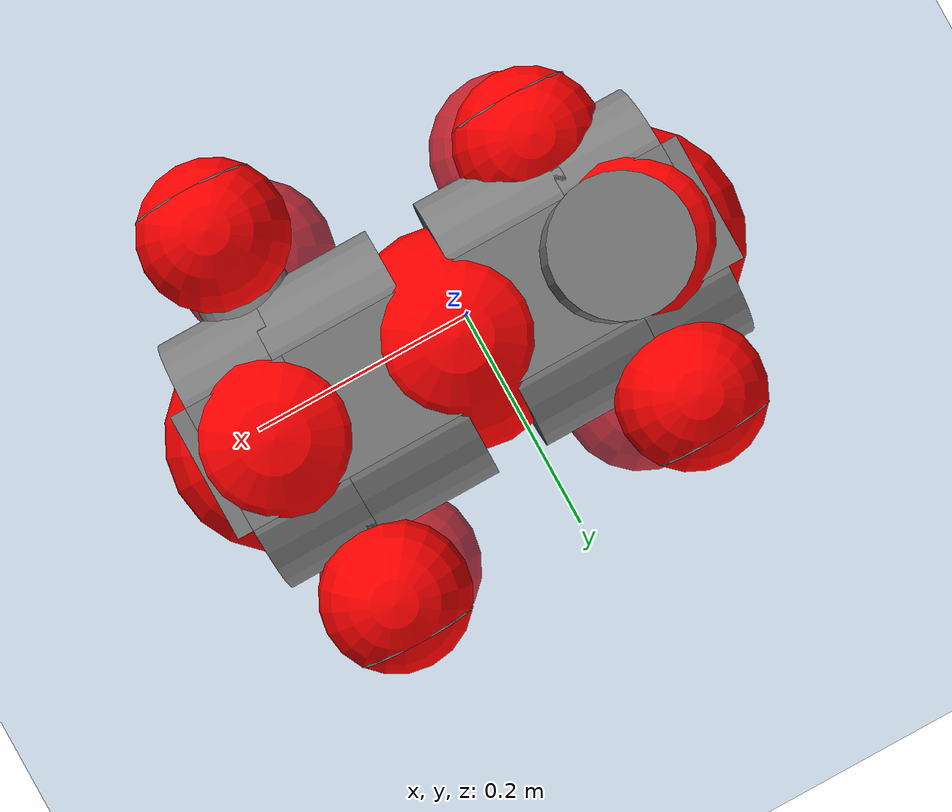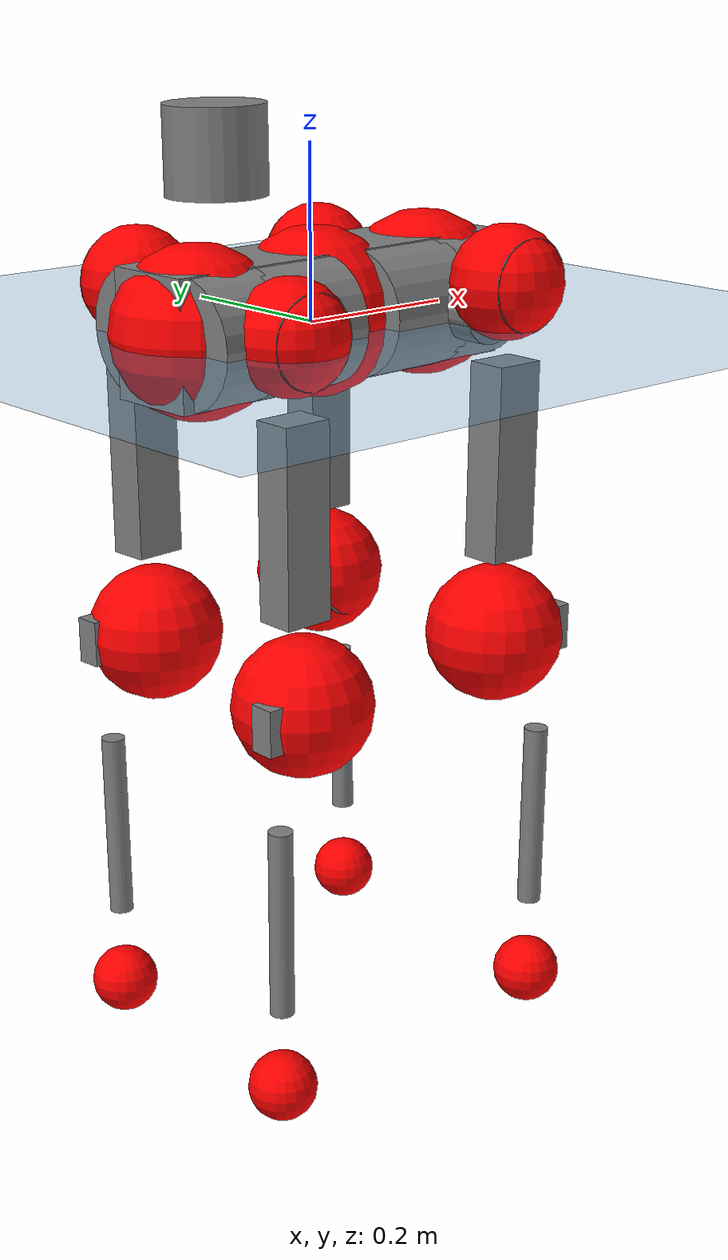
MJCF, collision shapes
<mujoco model="anymal_c">
  <compiler angle="radian" assetdir="assets" balanceinertia="true" inertiafromgeom="false"/>

  <option timestep="0.005" density="1.2" viscosity="2e-05"/>

  <size nkey="1"/>

  <visual>
    <quality shadowsize="8192"/>
    <map shadowclip="0.5"/>
  </visual>

  <default>
    <default class="/">
      <material specular="0" shininess="0.25"/>
      <geom contype="0" conaffinity="0" group="1" solref="-1000 -80"/>
      <site size="0.01 0.005 0.005" group="5"/>
      <general forcelimited="true" forcerange="-80 80" biastype="affine" gainprm="80" biasprm="0 -80 -2"/>
      <default class="anymal_c">
        <joint armature="0.01" damping="0.01" frictionloss="0.1"/>
        <default class="visual">
          <geom type="mesh" group="2"/>
          <default class="visual_zflip"/>
        </default>
        <default class="collision">
          <geom type="cylinder" group="3"/>
          <default class="foot">
            <geom size="0.03 0 0" type="sphere" condim="6" priority="1" friction="0.8 0.02 0.01" solimp="0.015 1 0.03"/>
          </default>
        </default>
      </default>
      <default class="reward_collision_sphere">
        <geom group="5" rgba="1 0 0 1"/>
      </default>
    </default>
  </default>

  <asset>
    <texture type="skybox" colorspace="auto" name="//unnamed_texture_0" builtin="gradient" rgb1="0.95 0.95 0.95" rgb2="0.95 0.95 0.95" width="100" height="600"/>
    <texture type="2d" colorspace="auto" name="texplane" builtin="checker" rgb1="0.345 0.575 0.748" rgb2="0.345 0.575 0.748" markrgb="1 1 1" width="512" height="512"/>
    <texture type="2d" colorspace="linear" name="base" file="base.png"/>
    <texture type="2d" colorspace="linear" name="top_shell" file="top_shell.png"/>
    <texture type="2d" colorspace="linear" name="bottom_shell" file="bottom_shell.png"/>
    <texture type="2d" colorspace="linear" name="remote" file="remote.png"/>
    <texture type="2d" colorspace="linear" name="hatch" file="hatch.png"/>
    <texture type="2d" colorspace="linear" name="handle" file="handle.png"/>
    <texture type="2d" colorspace="linear" name="face" file="face.png"/>
    <texture type="2d" colorspace="linear" name="battery" file="battery.png"/>
    <texture type="2d" colorspace="linear" name="lidar_cage" file="lidar_cage.png"/>
    <texture type="2d" colorspace="linear" name="depth_camera" file="depth_camera.png"/>
    <texture type="2d" colorspace="linear" name="wide_angle_camera" file="wide_angle_camera.png"/>
    <texture type="2d" colorspace="linear" name="lidar" file="lidar.png"/>
    <texture type="2d" colorspace="linear" name="drive" file="drive.png"/>
    <texture type="2d" colorspace="linear" name="hip_l" file="hip_l.png"/>
    <texture type="2d" colorspace="linear" name="shank_l" file="shank_l.png"/>
    <texture type="2d" colorspace="linear" name="foot" file="foot.png"/>
    <texture type="2d" colorspace="linear" name="thigh" file="thigh.png"/>
    <texture type="2d" colorspace="linear" name="shank_r" file="shank_r.png"/>
    <texture type="2d" colorspace="linear" name="hip_r" file="hip_r.png"/>
    <material name="MatPlane" class="/" texture="texplane" texuniform="true" texrepeat="2 2" specular="0.9" shininess="0.5"/>
    <material name="black_plastic" class="/" rgba="0.007 0.007 0.007 1"/>
    <material name="green" class="/" rgba="0.052 0.178 0.033 1"/>
    <material name="red" class="/" rgba="0.178 0.006 0.005 1"/>
    <material name="yellow" class="/" rgba="0.178 0.119 0.006 1"/>
    <material name="lwl" class="/" rgba="0.8 0.8 0.8 1"/>
    <material name="base" class="/" texture="base"/>
    <material name="top_shell" class="/" texture="top_shell"/>
    <material name="bottom_shell" class="/" texture="bottom_shell"/>
    <material name="hip_l" class="/" texture="hip_l"/>
    <material name="thigh" class="/" texture="thigh"/>
    <material name="shank_l" class="/" texture="shank_l"/>
    <material name="foot" class="/" texture="foot"/>
    <material name="hip_r" class="/" texture="hip_r"/>
    <material name="shank" class="/" texture="shank_r"/>
    <material name="hatch" class="/" texture="hatch"/>
    <material name="remote" class="/" texture="remote"/>
    <material name="handle" class="/" texture="handle"/>
    <material name="face" class="/" texture="face"/>
    <material name="depth_camera" class="/" texture="depth_camera"/>
    <material name="wide_angle_camera" class="/" texture="wide_angle_camera"/>
    <material name="battery" class="/" texture="battery"/>
    <material name="lidar_cage" class="/" texture="lidar_cage"/>
    <material name="lidar" class="/" texture="lidar"/>
    <material name="drive" class="/" texture="drive"/>
    <mesh name="base_0" class="/" file="base_0.obj"/>
    <mesh name="base_1" class="/" file="base_1.obj"/>
    <mesh name="base_2" class="/" file="base_2.obj"/>
    <mesh name="base_3" class="/" file="base_3.obj"/>
    <mesh name="base_4" class="/" file="base_4.obj"/>
    <mesh name="base_5" class="/" file="base_5.obj"/>
    <mesh name="top_shell" class="/" file="top_shell.obj"/>
    <mesh name="bottom_shell" class="/" file="bottom_shell.obj"/>
    <mesh name="remote" class="/" file="remote.obj"/>
    <mesh name="handle" class="/" file="handle.obj"/>
    <mesh name="face" class="/" file="face.obj"/>
    <mesh name="wide_angle_camera" class="/" file="wide_angle_camera.obj"/>
    <mesh name="depth_camera" class="/" file="depth_camera.obj"/>
    <mesh name="battery" class="/" file="battery.obj"/>
    <mesh name="lidar_cage" class="/" file="lidar_cage.obj"/>
    <mesh name="lidar" class="/" file="lidar.obj"/>
    <mesh name="drive" class="/" file="drive.obj"/>
    <mesh name="hip_l" class="/" file="hip_l.obj"/>
    <mesh name="thigh" class="/" file="thigh.obj"/>
    <mesh name="shank_l" class="/" file="shank_l.obj"/>
    <mesh name="foot" class="/" file="foot.obj"/>
    <mesh name="hip_r" class="/" file="hip_r.obj"/>
    <mesh name="hatch" class="/" file="hatch.obj"/>
    <mesh name="shank_r" class="/" file="shank_r.obj"/>
  </asset>

  <worldbody>
    <geom name="floor" class="/" size="100 100 0.125" type="plane" group="0" material="MatPlane"/>
    <light name="toplight_shadow" class="/" pos="0 0 5" dir="0.0990148 0.0990148 -0.990148" type="directional" ambient="0.04 0.04 0.04" diffuse="0.55 0.55 0.55" specular="0.12 0.12 0.12"/>
    <light name="toplight_fill" class="/" pos="0 0 5" dir="0.0990148 0.0990148 -0.990148" type="directional" castshadow="false" ambient="0.04 0.04 0.04" diffuse="0.3 0.3 0.3" specular="0.08 0.08 0.08"/>
    <body name="trunk" childclass="anymal_c" pos="0.0168856 0.0126846 0.00876026" quat="0.999975 -0.00225955 -0.00643079 0.00207125">
      <inertial pos="0.0185169 0.00394772 0.075676" quat="0.512285 0.516795 0.506416 0.462634" mass="9.58958" diaginertia="0.00546846 0.0553459 1.12643"/>
      <joint name="//unnamed_joint_0" type="free" armature="0" damping="0" frictionloss="0"/>
      <geom name="//unnamed_geom_1" class="visual" material="green" mesh="base_0"/>
      <geom name="//unnamed_geom_2" class="visual" material="yellow" mesh="base_1"/>
      <geom name="//unnamed_geom_3" class="visual" material="red" mesh="base_2"/>
      <geom name="//unnamed_geom_4" class="visual" material="black_plastic" mesh="base_3"/>
      <geom name="//unnamed_geom_5" class="visual" material="lwl" mesh="base_4"/>
      <geom name="//unnamed_geom_6" class="visual" material="base" mesh="base_5"/>
      <geom name="trunk_1" class="collision" size="0.235671 0.0568861 0.0731392" type="box"/>
      <geom name="trunk_2" class="collision" size="0.0731392 0.0589177" pos="0.0820058 0.0433228 0" quat="0.707107 0 0.707107 0"/>
      <geom name="trunk_3" class="collision" size="0.0731392 0.0589177" pos="-0.0820058 0.0433228 0" quat="0.707107 0 0.707107 0"/>
      <geom name="trunk_4" class="collision" size="0.0731392 0.0589177" pos="0.0820058 -0.0433228 0" quat="0.707107 0 0.707107 0"/>
      <geom name="trunk_5" class="collision" size="0.0731392 0.0589177" pos="-0.0820058 -0.0433228 0" quat="0.707107 0 0.707107 0"/>
      <geom name="//unnamed_geom_12" class="visual" material="top_shell" mesh="top_shell"/>
      <geom name="//unnamed_geom_13" class="visual" material="bottom_shell" mesh="bottom_shell"/>
      <geom name="//unnamed_geom_14" class="visual" material="remote" mesh="remote"/>
      <geom name="//unnamed_geom_15" class="visual" material="handle" mesh="handle"/>
      <geom name="//unnamed_geom_16" class="visual" pos="0.156282 0 0" quat="1 0 0 0" material="face" mesh="face"/>
      <geom name="trunk_6" class="collision" size="0.0446962 0.0568861 0.0731392" pos="0.17702 0 0" type="box"/>
      <geom name="//unnamed_geom_18" class="collision" size="0.0731392 0.0446962" pos="0.17702 0.0433228 0" quat="0.707107 0 0.707107 0"/>
      <geom name="//unnamed_geom_19" class="collision" size="0.0731392 0.0446962" pos="0.17702 -0.0433228 0" quat="0.707107 0 0.707107 0"/>
      <geom name="//unnamed_geom_20" class="visual" pos="0.174104 0 -0.0502016" quat="0.965926 0 0.258819 0" material="depth_camera" mesh="depth_camera"/>
      <geom name="//unnamed_geom_21" class="visual" pos="0.193421 0 0.0215873" material="wide_angle_camera" mesh="wide_angle_camera"/>
      <geom name="//unnamed_geom_22" class="visual_zflip" pos="-0.156282 0 0" quat="0 0 0 1" material="face" mesh="face"/>
      <geom name="trunk_7" class="collision" size="0.0446962 0.0568861 0.0731392" pos="-0.17702 0 0" quat="0 0 0 1" type="box"/>
      <geom name="//unnamed_geom_24" class="collision" size="0.0731392 0.0446962" pos="-0.17702 -0.0433228 0" quat="0 -0.707107 0 0.707107"/>
      <geom name="//unnamed_geom_25" class="collision" size="0.0731392 0.0446962" pos="-0.17702 0.0433228 0" quat="0 -0.707107 0 0.707107"/>
      <geom name="//unnamed_geom_26" class="visual" pos="-0.174104 0 -0.0502016" quat="0 -0.258819 0 0.965926" material="depth_camera" mesh="depth_camera"/>
      <geom name="//unnamed_geom_27" class="visual_zflip" pos="-0.193421 0 0.0215873" quat="0 0 0 1" material="wide_angle_camera" mesh="wide_angle_camera"/>
      <geom name="//unnamed_geom_28" class="visual" material="battery" mesh="battery"/>
      <geom name="//unnamed_geom_29" class="visual" pos="0 0.0505387 0.0337972" quat="0.683013 -0.183013 0.183013 0.683013" material="depth_camera" mesh="depth_camera"/>
      <geom name="//unnamed_geom_30" class="visual" pos="0 -0.0505387 0.0337972" quat="0.683013 0.183013 0.183013 -0.683013" material="depth_camera" mesh="depth_camera"/>
      <geom name="//unnamed_geom_31" class="visual" pos="-0.137242 0 0.10599" quat="1 0 0 0" material="lidar_cage" mesh="lidar_cage"/>
      <geom name="trunk_8" class="collision" size="0.0568861 0.0487595" pos="-0.137242 0 0.192512"/>
      <geom name="//unnamed_geom_33" class="visual" pos="-0.137242 9.50196e-05 0.205058" quat="0.707107 0 0 -0.707107" material="lidar" mesh="lidar"/>
      <geom name="//unnamed_geom_34" class="visual" pos="0.113074 0.0646577 -1.41993e-08" quat="0.258819 0.965926 0 0" material="drive" mesh="drive"/>
      <geom name="//unnamed_geom_35" class="visual" pos="0.113074 -0.0646577 1.41993e-08" quat="0.258819 -0.965926 0 0" material="drive" mesh="drive"/>
      <geom name="//unnamed_geom_36" class="visual" pos="-0.113074 0.0646577 1.41993e-08" quat="0 0 0.965926 -0.258819" material="drive" mesh="drive"/>
      <geom name="//unnamed_geom_37" class="visual" pos="-0.113074 -0.0646577 -1.41993e-08" quat="0 0 -0.965926 -0.258819" material="drive" mesh="drive"/>
      <geom name="//unnamed_geom_38" class="visual" pos="0.0437365 0 0.105269" quat="1 0 0 0" material="hatch" mesh="hatch"/>
      <geom name="//unnamed_geom_39" class="reward_collision_sphere" size="0.097519"/>
      <geom name="//unnamed_geom_40" class="reward_collision_sphere" size="0.097519" pos="0.169667 0 0"/>
      <geom name="//unnamed_geom_41" class="reward_collision_sphere" size="0.097519" pos="-0.169667 0 0"/>
      <site name="imu" pos="0.0798687 -0.0368012 0.102515" size="0.00812658"/>
      <camera name="track" pos="0 -1.23779 0" quat="0.707107 0.707107 0 0" mode="trackcom"/>
      <camera name="ego_camera" pos="0.169667 0 -0.0576816" quat="-0.5 -0.5 0.5 0.5"/>
      <body name="LF_HIP" pos="0.1246 0.0761708 -0.0088498" quat="0.262347 0.964944 -0.0043103 -0.0062635">
        <inertial pos="0.0391856 0.00101591 -0.00136911" quat="-0.124989 0.710709 -0.118522 0.682073" mass="1.28294" diaginertia="3.85785e-05 0.00043505 0.0143882"/>
        <joint name="LF_HAA" pos="0 0 0" axis="0.999637 -0.0262618 0.0059321" stiffness="0.0404173" range="-0.647107 0.791525" armature="0.00265192" damping="0.0688599" frictionloss="0.0440558"/>
        <geom name="//unnamed_geom_42" class="visual" pos="0 -0.000835281 0.000137194" quat="0.258819 -0.965926 0 0" material="hip_l" mesh="hip_l"/>
        <geom name="//unnamed_geom_43" class="visual" pos="0.0225846 -0.0308429 -0.0238955" quat="0.183013 -0.683013 0.683013 0.183013" material="drive" mesh="drive"/>
        <geom name="//unnamed_geom_44" class="collision" size="0.0406329 0.0568861" pos="0.0225846 -0.00740188 -0.00995728" quat="-0.353553 -0.612372 0.612372 -0.353553"/>
        <body name="LF_THIGH" pos="0.0228631 -0.0502118 -0.0689593" quat="0.183009 -0.683923 0.682162 0.182789">
          <inertial pos="-0.00521793 -0.00419978 -0.369908" quat="0.990798 -0.00371426 -0.0938403 0.0974631" mass="1.75181" diaginertia="0.000237523 0.00242262 0.0283168"/>
          <joint name="LF_HFE" pos="0 0 0" axis="0.998809 0.0166313 0.0458686" range="-2.85389 2.86774" armature="0.00293812" damping="0.0928124" frictionloss="0.0402134"/>
          <geom name="//unnamed_geom_45" class="visual" pos="-0.00481203 -7.58263e-06 0" quat="0.707107 0 0 -0.707107" material="thigh" mesh="thigh"/>
          <geom name="//unnamed_geom_46" class="collision" size="0.0528228 0.0325063" pos="0.0150815 0 0" quat="0.5 0.5 -0.5 -0.5"/>
          <geom name="//unnamed_geom_47" class="collision" size="0.0304747 0.0243797 0.11484" pos="0.0113112 0 -0.20378" quat="0.707107 0 0 -0.707107" type="box"/>
          <geom name="//unnamed_geom_48" class="visual" pos="0.0378169 0 -0.410981" quat="1 0 0 0" material="drive" mesh="drive"/>
          <geom name="//unnamed_geom_49" class="collision" size="0.0406329 0.0568861" pos="0.0114243 0 -0.410981" quat="0.707107 0 0.707107 0"/>
          <geom name="//unnamed_geom_50" class="reward_collision_sphere" size="0.0650126" pos="0.00942596 0 0"/>
          <body name="LF_SHANK" pos="0.039679 -0.00628457 -0.407235" quat="0.999982 -0.00564566 -0.00190715 0.000866402">
            <inertial pos="-0.00919952 -0.0483545 -0.102969" quat="0.983342 -0.16636 0.0474183 -0.0558046" mass="0.287599" diaginertia="8.52494e-05 0.000732842 0.0080597"/>
            <joint name="LF_KFE" pos="0 0 0" axis="0.999481 0.0155385 -0.0282309" range="-3.0601 3.43404" armature="0.0130194" damping="0.00901232" frictionloss="0.101727"/>
            <geom name="//unnamed_geom_51" class="visual" pos="-0.0015691 -0.0083665 0" quat="0.707107 0 0 -0.707107" material="shank_l" mesh="shank_l"/>
            <geom name="LF_kfe_act" class="collision" size="0.0487595 0.0162532" pos="0.00754077 0 0" quat="0.5 0.5 -0.5 -0.5"/>
            <geom name="//unnamed_geom_53" class="collision" size="0.046727 0.0274272 0.0154405" pos="0.00754077 -0.0355859 0" quat="0.5 0.5 -0.5 -0.5" type="box"/>
            <geom name="//unnamed_geom_54" class="visual" pos="0.00492073 -0.0571281 -0.487366" quat="0.382683 0 0 -0.92388" material="foot" mesh="foot"/>
            <geom name="LF_calf" class="collision" size="0.0142215 0.11479" pos="0.00492035 -0.0544319 -0.243683" quat="0.707107 0 0 -0.707107"/>
            <geom name="LF_foot" class="foot" size="0.018282" pos="0.00492035 -0.0544319 -0.45492" quat="0.707107 0 0 -0.707107"/>
            <geom name="//unnamed_geom_57" class="reward_collision_sphere" size="0.0812658" pos="-0.0188519 0 0"/>
            <geom name="//unnamed_geom_58" class="reward_collision_sphere" size="0.0406329" pos="0.00492035 -0.0544319 -0.45492"/>
            <site name="LF_foot" class="foot" pos="0.00492035 -0.0544319 -0.45492" quat="0.707107 0 0 -0.707107" size="0.00812658"/>
          </body>
        </body>
      </body>
      <body name="RF_HIP" pos="0.11537 -0.0791893 -0.0013033" quat="0.263351 -0.964699 0.000632654 0.00106933">
        <inertial pos="0.00747213 0.00233571 -0.011252" quat="0.132393 0.671823 0.141592 0.714897" mass="0.959602" diaginertia="4.01019e-05 0.000406053 0.0198352"/>
        <joint name="RF_HAA" pos="0 0 0" axis="0.999974 -0.00715169 0.00079466" stiffness="0.0305526" range="-0.70978 0.671793" armature="0.0154063" damping="0.0216521" frictionloss="0.0118401"/>
        <geom name="//unnamed_geom_59" class="visual" pos="0 0.000835274 0.000137194" quat="0.258819 0.965926 0 0" material="hip_r" mesh="hip_r"/>
        <geom name="//unnamed_geom_60" class="visual" pos="0.0225846 0.0308429 -0.0238955" quat="0.183013 0.683013 0.683013 -0.183013" material="drive" mesh="drive"/>
        <geom name="//unnamed_geom_61" class="collision" size="0.0406329 0.0568861" pos="0.0225846 0.00740188 -0.00995728" quat="-0.353553 0.612372 0.612372 0.353553"/>
        <body name="RF_THIGH" pos="0.0191788 0.0521866 -0.0759034" quat="0.18655 0.67887 0.687346 -0.17858">
          <inertial pos="0.0245967 0.017638 -0.346978" quat="0.994072 0.0164608 -0.0695922 0.0818922" mass="2.22918" diaginertia="0.000248741 0.00334919 0.0339226"/>
          <joint name="RF_HFE" pos="0 0 0" axis="0.999615 -0.00623642 -0.0270351" stiffness="0.020665" range="-2.98948 3.31048" armature="0.00846702" damping="0.0108367" frictionloss="0.0437989"/>
          <geom name="//unnamed_geom_62" class="visual" pos="-0.00481203 -7.58263e-06 0" quat="0.707107 0 0 -0.707107" material="thigh" mesh="thigh"/>
          <geom name="//unnamed_geom_63" class="collision" size="0.0528228 0.0325063" pos="0.0150815 0 0" quat="0.5 0.5 0.5 0.5"/>
          <geom name="//unnamed_geom_64" class="collision" size="0.0304747 0.0243797 0.11484" pos="0.0113112 0 -0.20378" quat="0.707107 0 0 0.707107" type="box"/>
          <geom name="//unnamed_geom_65" class="visual" pos="0.0378169 0 -0.410981" quat="1 0 0 0" material="drive" mesh="drive"/>
          <geom name="//unnamed_geom_66" class="collision" size="0.0406329 0.0568861" pos="0.0114243 0 -0.410981" quat="0.707107 0 0.707107 0"/>
          <geom name="//unnamed_geom_67" class="reward_collision_sphere" size="0.0650126" pos="0.00942596 0 0"/>
          <body name="RF_SHANK" pos="0.0255753 0.00150389 -0.413797" quat="1 -2.63391e-05 -4.65715e-05 -0.000260326">
            <inertial pos="-0.00839313 0.0387085 -0.109076" quat="0.990163 0.135913 -0.015998 0.0291289" mass="0.235899" diaginertia="5.16279e-05 0.00079891 0.0054867"/>
            <joint name="RF_KFE" pos="0 0 0" axis="0.997531 -0.0600361 -0.0364375" stiffness="0.0562738" range="-3.15906 3.23089" armature="0.00668103" damping="0" frictionloss="0.0534558"/>
            <geom name="//unnamed_geom_68" class="visual" pos="-0.00156909 0.00836649 0" quat="0.707107 0 0 0.707107" material="shank" mesh="shank_r"/>
            <geom name="RF_kfe_act" class="collision" size="0.0487595 0.0162532" pos="0.00754077 0 0" quat="0.5 0.5 0.5 0.5"/>
            <geom name="//unnamed_geom_70" class="collision" size="0.046727 0.0274272 0.0154405" pos="0.00754077 0.0355859 0" quat="0.5 0.5 0.5 0.5" type="box"/>
            <geom name="//unnamed_geom_71" class="visual" pos="0.00491997 0.0571281 -0.487366" quat="0.382683 0 0 0.92388" material="foot" mesh="foot"/>
            <geom name="RF_calf" class="collision" size="0.0142215 0.11479" pos="0.00492035 0.0544319 -0.243683" quat="0.707107 0 0 0.707107"/>
            <geom name="RF_foot" class="foot" size="0.0251184" pos="0.00492035 0.0544319 -0.45492" quat="0.707107 0 0 0.707107"/>
            <geom name="//unnamed_geom_74" class="reward_collision_sphere" size="0.0812658" pos="-0.0188519 0 0"/>
            <geom name="//unnamed_geom_75" class="reward_collision_sphere" size="0.0406329" pos="0.00492035 0.0544319 -0.45492"/>
            <site name="RF_foot" class="foot" pos="0.00492035 0.0544319 -0.45492" quat="0.707107 0 0 0.707107" size="0.00812658"/>
          </body>
        </body>
      </body>
      <body name="LH_HIP" pos="-0.10746 0.0586795 -0.0111113" quat="-0.000333254 -0.00880713 0.965099 -0.261737">
        <inertial pos="0.00447724 0.0156608 -0.0162345" quat="0.135004 0.679711 0.127154 0.709647" mass="1.31489" diaginertia="4.28751e-05 0.000357726 0.0213648"/>
        <joint name="LH_HAA" pos="0 0 0" axis="0.999497 0.0287752 -0.0133116" range="-0.374865 0.622498" armature="0.0073896" damping="0.0135952" frictionloss="0.0460737"/>
        <geom name="//unnamed_geom_76" class="visual" pos="0 0.000835274 0.000137194" quat="-0.258819 -0.965926 0 0" material="hip_r" mesh="hip_r"/>
        <geom name="//unnamed_geom_77" class="visual" pos="0.0225846 0.0308429 -0.0238955" quat="0.183013 0.683013 0.683013 -0.183013" material="drive" mesh="drive"/>
        <geom name="//unnamed_geom_78" class="collision" size="0.0406329 0.0568861" pos="0.0225846 0.00740188 -0.00995728" quat="-0.353553 0.612372 0.612372 0.353553"/>
        <body name="LH_THIGH" pos="0.0388584 0.0356764 -0.0735461" quat="0.18431 0.688589 0.677747 -0.180372">
          <inertial pos="0.0142063 0.00581012 -0.348538" quat="0.989839 0.0646296 -0.105389 0.0702563" mass="1.94232" diaginertia="0.000208541 0.00317096 0.0233919"/>
          <joint name="LH_HFE" pos="0 0 0" axis="0.99999 -0.00376623 -0.00236221" range="-3.03834 3.18194" armature="0.0124965" damping="0.0932545" frictionloss="0.114689"/>
          <geom name="//unnamed_geom_79" class="visual" pos="-0.00481203 -7.58263e-06 0" quat="0.707107 0 0 -0.707107" material="thigh" mesh="thigh"/>
          <geom name="//unnamed_geom_80" class="collision" size="0.0528228 0.0325063" pos="0.0150815 0 0" quat="0.5 0.5 -0.5 -0.5"/>
          <geom name="//unnamed_geom_81" class="collision" size="0.0304747 0.0243797 0.11484" pos="0.0113112 0 -0.20378" quat="0.707107 0 0 -0.707107" type="box"/>
          <geom name="//unnamed_geom_82" class="visual" pos="0.0378169 0 -0.410981" quat="1 0 0 0" material="drive" mesh="drive"/>
          <geom name="//unnamed_geom_83" class="collision" size="0.0406329 0.0568861" pos="0.0114243 0 -0.410981" quat="0.707107 0 0.707107 0"/>
          <geom name="//unnamed_geom_84" class="reward_collision_sphere" size="0.0650126" pos="0.00942596 0 0"/>
          <body name="LH_SHANK" pos="0.0300127 -0.00541103 -0.420977" quat="0.999999 0.000199934 0.000954715 -0.000674579">
            <inertial pos="0.00198138 0.0390986 -0.127389" quat="0.992414 0.120157 -0.00157767 0.0259753" mass="0.318082" diaginertia="7.71181e-05 0.000789342 0.00712457"/>
            <joint name="LH_KFE" pos="0 0 0" axis="0.999972 0.00736562 0.00137936" stiffness="0.0177381" range="-3.00209 3.12932" armature="0.0126677" damping="0.0805944" frictionloss="0.0922352"/>
            <geom name="//unnamed_geom_85" class="visual" pos="-0.00156909 0.00836649 0" quat="-0.707107 0 0 -0.707107" material="shank" mesh="shank_r"/>
            <geom name="LH_kfe_act" class="collision" size="0.0487595 0.0162532" pos="0.00754077 0 0" quat="0.5 0.5 -0.5 -0.5"/>
            <geom name="//unnamed_geom_87" class="collision" size="0.046727 0.0274272 0.0154405" pos="0.00754077 0.0355859 0" quat="0.5 0.5 -0.5 -0.5" type="box"/>
            <geom name="//unnamed_geom_88" class="visual" pos="0.00491997 0.0571281 -0.487366" quat="-0.382683 0 0 -0.92388" material="foot" mesh="foot"/>
            <geom name="LH_calf" class="collision" size="0.0142215 0.11479" pos="0.00492035 0.0544319 -0.243683" quat="0.707107 0 0 -0.707107"/>
            <geom name="LH_foot" class="foot" size="0.0128593" pos="0.00492035 0.0544319 -0.45492" quat="0.707107 0 0 -0.707107"/>
            <geom name="//unnamed_geom_91" class="reward_collision_sphere" size="0.0812658" pos="-0.0188519 0 0"/>
            <geom name="//unnamed_geom_92" class="reward_collision_sphere" size="0.0406329" pos="0.00492035 0.0544319 -0.45492"/>
            <site name="LH_foot" class="foot" pos="0.00492035 0.0544319 -0.45492" quat="0.707107 0 0 -0.707107" size="0.00812658"/>
          </body>
        </body>
      </body>
      <body name="RH_HIP" pos="-0.112621 -0.0478879 -0.0139593" quat="-0.00530748 -0.00169666 -0.965067 -0.261944">
        <inertial pos="0.0221707 -0.023449 -0.0117359" quat="-0.131194 0.652085 -0.151046 0.731272" mass="1.53581" diaginertia="3.96053e-05 0.000392575 0.0235013"/>
        <joint name="RH_HAA" pos="0 0 0" axis="0.9996 -0.00635369 -0.0275484" range="-0.830855 0.457522" armature="0.000519482" damping="0" frictionloss="0.142852"/>
        <geom name="//unnamed_geom_93" class="visual" pos="0 -0.000835281 0.000137194" quat="-0.258819 0.965926 0 0" material="hip_l" mesh="hip_l"/>
        <geom name="//unnamed_geom_94" class="visual" pos="0.0225846 -0.0308429 -0.0238955" quat="-0.183013 0.683013 -0.683013 -0.183013" material="drive" mesh="drive"/>
        <geom name="//unnamed_geom_95" class="collision" size="0.0406329 0.0568861" pos="0.0225846 -0.00740188 -0.00995728" quat="0.353553 0.612372 -0.612372 0.353553"/>
        <body name="RH_THIGH" pos="0.0201912 -0.0391942 -0.0460401" quat="-0.178512 0.683108 -0.683737 -0.184394">
          <inertial pos="0.0120681 0.00999298 -0.357557" quat="0.992547 0.000273395 -0.0843987 0.0878999" mass="2.04995" diaginertia="0.000283992 0.00306633 0.0345888"/>
          <joint name="RH_HFE" pos="0 0 0" axis="0.999543 0.0289231 -0.00873384" stiffness="0.0621319" range="-2.82203 2.91004" armature="0.00419244" damping="0.0356182" frictionloss="0.10986"/>
          <geom name="//unnamed_geom_96" class="visual" pos="-0.00481203 -7.58263e-06 0" quat="0.707107 0 0 -0.707107" material="thigh" mesh="thigh"/>
          <geom name="//unnamed_geom_97" class="collision" size="0.0528228 0.0325063" pos="0.0150815 0 0" quat="0.5 0.5 0.5 0.5"/>
          <geom name="//unnamed_geom_98" class="collision" size="0.0304747 0.0243797 0.11484" pos="0.0113112 0 -0.20378" quat="0.707107 0 0 0.707107" type="box"/>
          <geom name="//unnamed_geom_99" class="visual" pos="0.0378169 0 -0.410981" quat="1 0 0 0" material="drive" mesh="drive"/>
          <geom name="//unnamed_geom_100" class="collision" size="0.0406329 0.0568861" pos="0.0114243 0 -0.410981" quat="0.707107 0 0.707107 0"/>
          <geom name="//unnamed_geom_101" class="reward_collision_sphere" size="0.0650126" pos="0.00942596 0 0"/>
          <body name="RH_SHANK" pos="0.0568091 -0.0132545 -0.408489" quat="0.999996 -0.000296783 0.0028016 0.000610899">
            <inertial pos="-0.0161566 -0.0377991 -0.127105" quat="0.995035 -0.094737 0.030305 -0.00351804" mass="0.298546" diaginertia="8.14691e-05 0.00118591 0.00718627"/>
            <joint name="RH_KFE" pos="0 0 0" axis="0.999583 0.0287473 -0.00279748" range="-3.40136 2.76972" armature="0.0144079" damping="0" frictionloss="0.0519263"/>
            <geom name="//unnamed_geom_102" class="visual" pos="-0.0015691 -0.0083665 0" quat="0.707107 0 0 -0.707107" material="shank_l" mesh="shank_l"/>
            <geom name="RH_kfe_act" class="collision" size="0.0487595 0.0162532" pos="0.00754077 0 0" quat="0.5 0.5 0.5 0.5"/>
            <geom name="//unnamed_geom_104" class="collision" size="0.046727 0.0274272 0.0154405" pos="0.00754077 -0.0355859 0" quat="0.5 0.5 0.5 0.5" type="box"/>
            <geom name="//unnamed_geom_105" class="visual" pos="0.00492073 -0.0571281 -0.487366" quat="0.382683 0 0 -0.92388" material="foot" mesh="foot"/>
            <geom name="RH_calf" class="collision" size="0.0142215 0.11479" pos="0.00492035 -0.0544319 -0.243683" quat="0.707107 0 0 0.707107"/>
            <geom name="RH_foot" class="foot" size="0.0258396" pos="0.00492035 -0.0544319 -0.45492" quat="0.707107 0 0 0.707107"/>
            <geom name="//unnamed_geom_108" class="reward_collision_sphere" size="0.0812658" pos="-0.0188519 0 0"/>
            <geom name="//unnamed_geom_109" class="reward_collision_sphere" size="0.0406329" pos="0.00492035 -0.0544319 -0.45492"/>
            <site name="RH_foot" class="foot" pos="0.00492035 -0.0544319 -0.45492" quat="0.707107 0 0 0.707107" size="0.00812658"/>
          </body>
        </body>
      </body>
    </body>
  </worldbody>

  <contact>
    <pair class="/" geom1="floor" geom2="LF_foot" name="//unnamed_contact_0"/>
    <pair class="/" geom1="floor" geom2="RF_foot" name="//unnamed_contact_1"/>
    <pair class="/" geom1="floor" geom2="LH_foot" name="//unnamed_contact_2"/>
    <pair class="/" geom1="floor" geom2="RH_foot" name="//unnamed_contact_3"/>
  </contact>

  <actuator>
    <general name="LF_HAA" class="/" joint="LF_HAA" forcerange="-73.7902 73.7902" gainprm="63.1068" biasprm="0 -63.1068 -1.54407"/>
    <general name="LF_HFE" class="/" joint="LF_HFE" forcerange="-90.4564 90.4564" gainprm="63.1068" biasprm="0 -63.1068 -1.54407"/>
    <general name="LF_KFE" class="/" joint="LF_KFE" forcerange="-65.5222 65.5222" gainprm="63.1068" biasprm="0 -63.1068 -1.54407"/>
    <general name="RF_HAA" class="/" joint="RF_HAA" forcerange="-21.325 21.325" gainprm="63.1068" biasprm="0 -63.1068 -1.54407"/>
    <general name="RF_HFE" class="/" joint="RF_HFE" forcerange="-66.1752 66.1752" gainprm="63.1068" biasprm="0 -63.1068 -1.54407"/>
    <general name="RF_KFE" class="/" joint="RF_KFE" forcerange="-97.4561 97.4561" gainprm="63.1068" biasprm="0 -63.1068 -1.54407"/>
    <general name="LH_HAA" class="/" joint="LH_HAA" forcerange="-76.2292 76.2292" gainprm="63.1068" biasprm="0 -63.1068 -1.54407"/>
    <general name="LH_HFE" class="/" joint="LH_HFE" forcerange="-76.566 76.566" gainprm="63.1068" biasprm="0 -63.1068 -1.54407"/>
    <general name="LH_KFE" class="/" joint="LH_KFE" forcerange="-56.816 56.816" gainprm="63.1068" biasprm="0 -63.1068 -1.54407"/>
    <general name="RH_HAA" class="/" joint="RH_HAA" forcerange="-53.4636 53.4636" gainprm="63.1068" biasprm="0 -63.1068 -1.54407"/>
    <general name="RH_HFE" class="/" joint="RH_HFE" forcerange="-83.9223 83.9223" gainprm="63.1068" biasprm="0 -63.1068 -1.54407"/>
    <general name="RH_KFE" class="/" joint="RH_KFE" forcerange="-26.2759 26.2759" gainprm="63.1068" biasprm="0 -63.1068 -1.54407"/>
  </actuator>

  <sensor>
    <gyro site="imu" name="imu_angular_velocity"/>
    <velocimeter site="imu" name="imu_linear_velocity"/>
    <framelinvel objtype="site" objname="LF_foot" name="LF_foot_global_linear_velocity"/>
    <framelinvel objtype="site" objname="RF_foot" name="RF_foot_global_linear_velocity"/>
    <framelinvel objtype="site" objname="LH_foot" name="LH_foot_global_linear_velocity"/>
    <framelinvel objtype="site" objname="RH_foot" name="RH_foot_global_linear_velocity"/>
  </sensor>

  <keyframe>
    <key name="home" qpos="0 0 0.55 1 0 0 0 0 0.4 -0.8 0 -0.4 0.8 0 -0.4 0.8 0 0.4 -0.8"/>
  </keyframe>
</mujoco>
